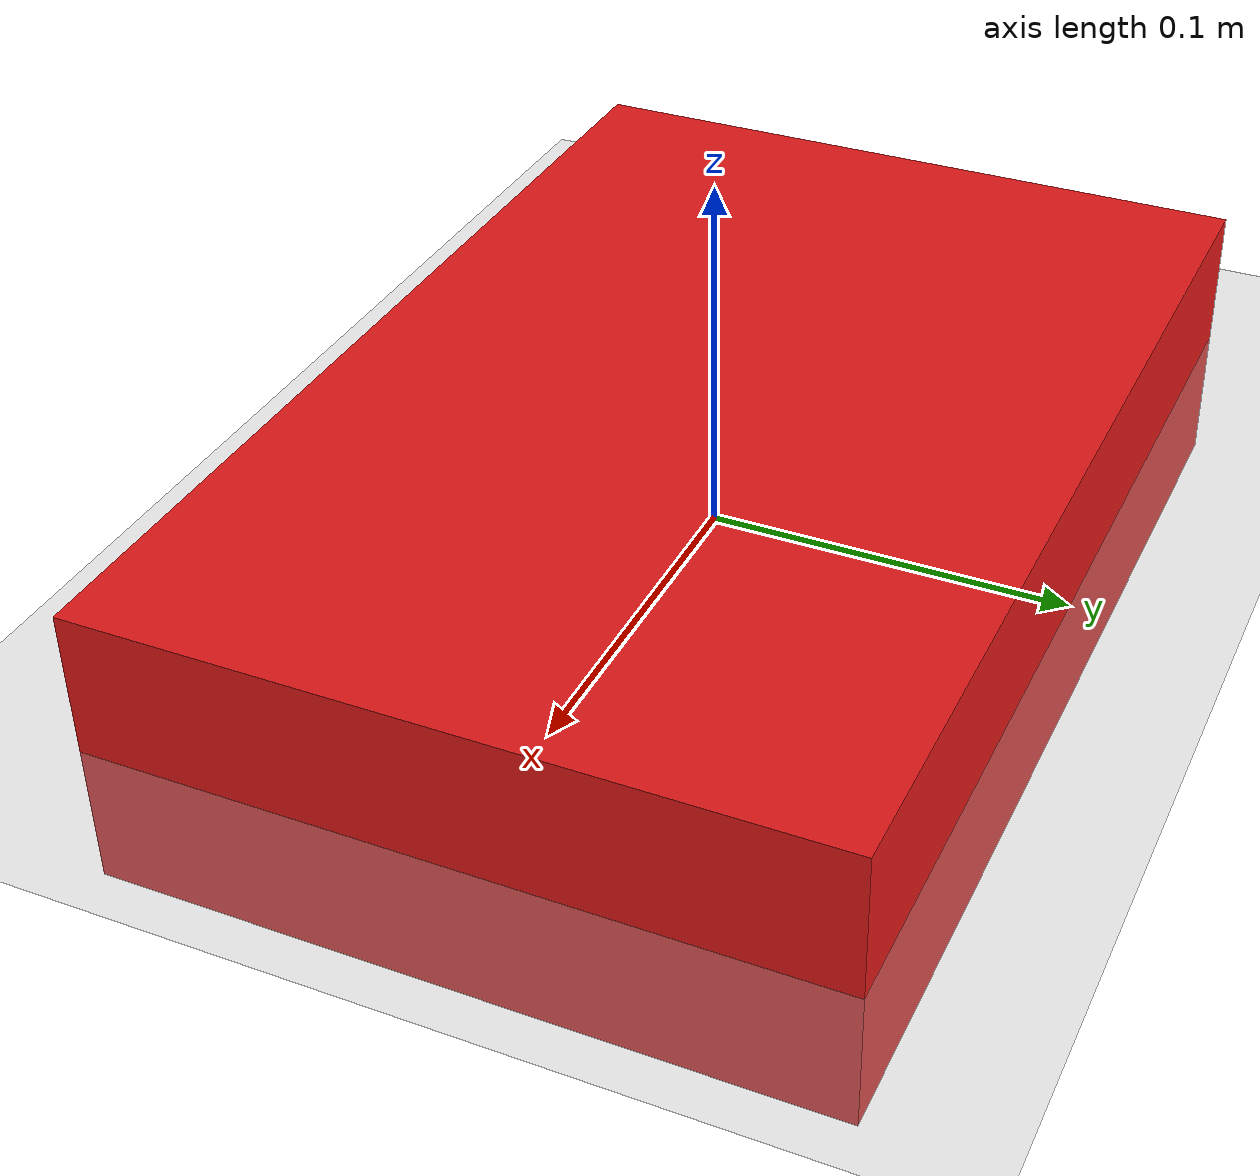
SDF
<?xml version="1.0" ?>
<sdf version="1.7">
  <world name="better_robot_world">
    <!-- Better lighting -->
    <light type="directional" name="sun">
      <pose>0 0 10 0 0 0</pose>
      <diffuse>0.9 0.9 0.9 1</diffuse>
      <specular>0.3 0.3 0.3 1</specular>
      <direction>-0.5 0.1 -0.9</direction>
    </light>

    <!-- Ground plane -->
    <model name="ground">
      <static>true</static>
      <link name="link">
        <collision name="collision">
          <geometry>
            <plane>
              <normal>0 0 1</normal>
              <size>20 20</size>
            </plane>
          </geometry>
        </collision>
        <visual name="visual">
          <geometry>
            <plane>
              <normal>0 0 1</normal>
              <size>20 20</size>
            </plane>
          </geometry>
          <material>
            <ambient>0.7 0.7 0.7 1</ambient>
            <diffuse>0.7 0.7 0.7 1</diffuse>
          </material>
        </visual>
      </link>
    </model>

    <!-- Completely redefined robot with obvious wheels -->
    <model name="skid_steer_robot">
      <static>false</static>

      <!-- Main body - make it more robot-like -->
      <link name="body">
        <collision name="body_collision">
          <geometry>
            <box>
              <size>0.3 0.2 0.08</size>
            </box>
          </geometry>
        </collision>
        <visual name="body_visual">
          <geometry>
            <box>
              <size>0.3 0.2 0.08</size>
            </box>
          </geometry>
          <material>
            <ambient>0.9 0.1 0.1 1</ambient>
            <diffuse>0.9 0.1 0.1 1</diffuse>
            <specular>0.2 0.2 0.2 1</specular>
          </material>
        </visual>
        <inertial>
          <mass>3.0</mass>
          <inertia>
            <ixx>0.02</ixx>
            <ixy>0</ixy>
            <ixz>0</ixz>
            <iyy>0.02</iyy>
            <iyz>0</iyz>
            <izz>0.02</izz>
          </inertia>
        </inertial>
      </link>

      <!-- Front left wheel - MUCH larger and obvious -->
      <link name="front_left_wheel">
        <collision name="wheel_collision">
          <geometry>
            <cylinder>
              <radius>0.08</radius>
              <length>0.06</length>
            </cylinder>
          </geometry>
        </collision>
        <visual name="wheel_visual">
          <geometry>
            <cylinder>
              <radius>0.08</radius>
              <length>0.06</length>
            </cylinder>
          </geometry>
          <material>
            <ambient>0.0 0.0 1.0 1</ambient>
            <diffuse>0.0 0.0 1.0 1</diffuse>
            <specular>0.3 0.3 0.3 1</specular>
          </material>
        </visual>
        <inertial>
          <mass>0.8</mass>
          <inertia>
            <ixx>0.003</ixx>
            <ixy>0</ixy>
            <ixz>0</ixz>
            <iyy>0.003</iyy>
            <iyz>0</iyz>
            <izz>0.003</izz>
          </inertia>
        </inertial>
      </link>

      <!-- Front right wheel -->
      <link name="front_right_wheel">
        <collision name="wheel_collision">
          <geometry>
            <cylinder>
              <radius>0.08</radius>
              <length>0.06</length>
            </cylinder>
          </geometry>
        </collision>
        <visual name="wheel_visual">
          <geometry>
            <cylinder>
              <radius>0.08</radius>
              <length>0.06</length>
            </cylinder>
          </geometry>
          <material>
            <ambient>0.0 0.0 1.0 1</ambient>
            <diffuse>0.0 0.0 1.0 1</diffuse>
            <specular>0.3 0.3 0.3 1</specular>
          </material>
        </visual>
        <inertial>
          <mass>0.8</mass>
          <inertia>
            <ixx>0.003</ixx>
            <ixy>0</ixy>
            <ixz>0</ixz>
            <iyy>0.003</iyy>
            <iyz>0</iyz>
            <izz>0.003</izz>
          </inertia>
        </inertial>
      </link>

      <!-- Rear left wheel -->
      <link name="rear_left_wheel">
        <collision name="wheel_collision">
          <geometry>
            <cylinder>
              <radius>0.08</radius>
              <length>0.06</length>
            </cylinder>
          </geometry>
        </collision>
        <visual name="wheel_visual">
          <geometry>
            <cylinder>
              <radius>0.08</radius>
              <length>0.06</length>
            </cylinder>
          </geometry>
          <material>
            <ambient>0.0 0.0 1.0 1</ambient>
            <diffuse>0.0 0.0 1.0 1</diffuse>
            <specular>0.3 0.3 0.3 1</specular>
          </material>
        </visual>
        <inertial>
          <mass>0.8</mass>
          <inertia>
            <ixx>0.003</ixx>
            <ixy>0</ixy>
            <ixz>0</ixz>
            <iyy>0.003</iyy>
            <iyz>0</iyz>
            <izz>0.003</izz>
          </inertia>
        </inertial>
      </link>

      <!-- Rear right wheel -->
      <link name="rear_right_wheel">
        <collision name="wheel_collision">
          <geometry>
            <cylinder>
              <radius>0.08</radius>
              <length>0.06</length>
            </cylinder>
          </geometry>
        </collision>
        <visual name="wheel_visual">
          <geometry>
            <cylinder>
              <radius>0.08</radius>
              <length>0.06</length>
            </cylinder>
          </geometry>
          <material>
            <ambient>0.0 0.0 1.0 1</ambient>
            <diffuse>0.0 0.0 1.0 1</diffuse>
            <specular>0.3 0.3 0.3 1</specular>
          </material>
        </visual>
        <inertial>
          <mass>0.8</mass>
          <inertia>
            <ixx>0.003</ixx>
            <ixy>0</ixy>
            <ixz>0</ixz>
            <iyy>0.003</iyy>
            <iyz>0</iyz>
            <izz>0.003</izz>
          </inertia>
        </inertial>
      </link>

      <!-- Joints - position wheels clearly outside the body -->
      <joint name="front_left_wheel_joint" type="revolute">
        <parent>body</parent>
        <child>front_left_wheel</child>
        <axis>
          <xyz>0 0 1</xyz>
        </axis>
        <pose>0.12 0.14 0.04 0 0 0</pose>
      </joint>

      <joint name="front_right_wheel_joint" type="revolute">
        <parent>body</parent>
        <child>front_right_wheel</child>
        <axis>
          <xyz>0 0 1</xyz>
        </axis>
        <pose>0.12 -0.14 0.04 0 0 0</pose>
      </joint>

      <joint name="rear_left_wheel_joint" type="revolute">
        <parent>body</parent>
        <child>rear_left_wheel</child>
        <axis>
          <xyz>0 0 1</xyz>
        </axis>
        <pose>-0.12 0.14 0.04 0 0 0</pose>
      </joint>

      <joint name="rear_right_wheel_joint" type="revolute">
        <parent>body</parent>
        <child>rear_right_wheel</child>
        <axis>
          <xyz>0 0 1</xyz>
        </axis>
        <pose>-0.12 -0.14 0.04 0 0 0</pose>
      </joint>
    </model>

    <!-- Physics -->
    <physics type="ode">
      <max_step_size>0.001</max_step_size>
      <real_time_factor>1</real_time_factor>
      <real_time_update_rate>1000</real_time_update_rate>
      <gravity>0 0 -9.81</gravity>
    </physics>

  </world>
</sdf>
